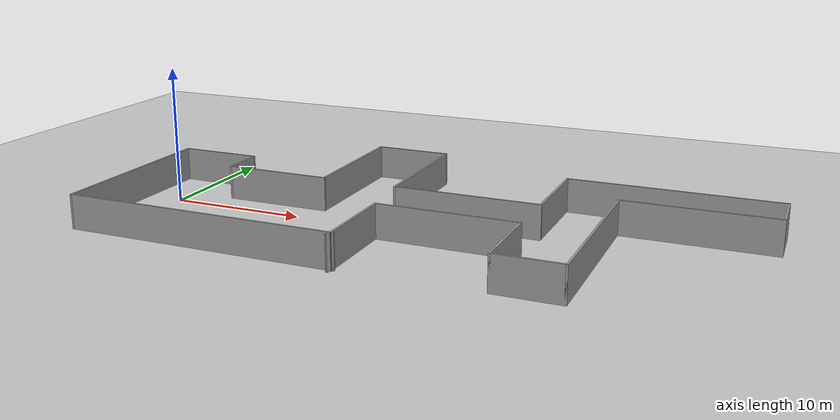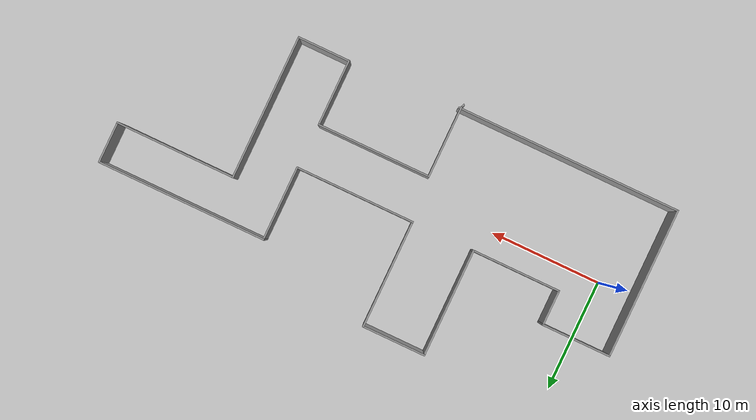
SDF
<sdf version="1.7">
 <world name="default">
  <light name="sun" type="directional">
   <pose>0 0 10 0 -0 0</pose>
   <diffuse>0.8 0.8 0.8 1</diffuse>
   <specular>0.2 0.2 0.2 1</specular>
   <attenuation>
    <range>1000</range>
    <constant>0.9</constant>
    <linear>0.01</linear>
    <quadratic>0.001</quadratic>
   </attenuation>
   <direction>-0.5 0.1 -0.9</direction>
   <spot><inner_angle>0</inner_angle><outer_angle>0</outer_angle><falloff>0</falloff></spot>
  </light>
  <model name="ground_plane">
   <static>1</static>
   <link name="link">
    <collision name="collision">
     <geometry><plane><normal>0 0 1</normal><size>100 100</size></plane></geometry>
     <surface><friction><ode><mu>100</mu><mu2>50</mu2></ode></friction></surface>
    </collision>
    <visual name="visual">
     <cast_shadows>0</cast_shadows>
     <geometry><plane><normal>0 0 1</normal><size>100 100</size></plane></geometry>
     <material>
      <script><uri>file://media/materials/scripts/gazebo.material</uri><name>Gazebo/Grey</name></script>
     </material>
    </visual>
   </link>
  </model>
  <gravity>0 0 -9.8</gravity>
  <magnetic_field>6e-06 2.3e-05 -4.2e-05</magnetic_field>
  <atmosphere type="adiabatic"/>
  <physics type="ode">
   <max_step_size>0.001</max_step_size>
   <real_time_factor>1</real_time_factor>
   <real_time_update_rate>1000</real_time_update_rate>
  </physics>
  <scene><ambient>0.4 0.4 0.4 1</ambient><background>0.7 0.7 0.7 1</background><shadows>1</shadows></scene>
  <spherical_coordinates>
   <surface_model>EARTH_WGS84</surface_model>
   <latitude_deg>0</latitude_deg>
   <longitude_deg>0</longitude_deg>
   <elevation>0</elevation>
   <heading_deg>0</heading_deg>
  </spherical_coordinates>
  <model name="irl_03_env">
   <pose>19.7404 1.58015 0 0 -0 0</pose>
   <link name="Wall_52">
    <collision name="Wall_52_Collision">
     <geometry><box><size>6.5 0.15 2.5</size></box></geometry>
     <pose>0 0 1.25 0 -0 0</pose>
    </collision>
    <visual name="Wall_52_Visual">
     <pose>0 0 1.25 0 -0 0</pose>
     <geometry><box><size>6.5 0.15 2.5</size></box></geometry>
     <material>
      <script><uri>file://media/materials/scripts/gazebo.material</uri><name>Gazebo/Grey</name></script>
      <ambient>1 1 1 1</ambient>
     </material>
     <meta><layer>0</layer></meta>
    </visual>
    <pose>-2.675 -6.66376 0 0 -0 1.5708</pose>
   </link>
   <link name="Wall_53">
    <collision name="Wall_53_Collision">
     <geometry><box><size>10.25 0.15 2.5</size></box></geometry>
     <pose>0 0 1.25 0 -0 0</pose>
    </collision>
    <visual name="Wall_53_Visual">
     <pose>0 0 1.25 0 -0 0</pose>
     <geometry><box><size>10.25 0.15 2.5</size></box></geometry>
     <material>
      <script><uri>file://media/materials/scripts/gazebo.material</uri><name>Gazebo/Grey</name></script>
      <ambient>1 1 1 1</ambient>
     </material>
     <meta><layer>0</layer></meta>
    </visual>
    <pose>2.375 -3.48875 0 0 -0 0</pose>
   </link>
   <link name="Wall_54">
    <collision name="Wall_54_Collision">
     <geometry><box><size>6 0.15 2.5</size></box></geometry>
     <pose>0 0 1.25 0 -0 0</pose>
    </collision>
    <visual name="Wall_54_Visual">
     <pose>0 0 1.25 0 -0 0</pose>
     <geometry><box><size>6 0.15 2.5</size></box></geometry>
     <material>
      <script><uri>file://media/materials/scripts/gazebo.material</uri><name>Gazebo/Grey</name></script>
      <ambient>1 1 1 1</ambient>
     </material>
     <meta><layer>0</layer></meta>
    </visual>
    <pose>7.425 -6.41376 0 0 -0 -1.5708</pose>
   </link>
   <link name="Wall_55">
    <collision name="Wall_55_Collision">
     <geometry><box><size>4.75 0.15 2.5</size></box></geometry>
     <pose>0 0 1.25 0 -0 0</pose>
    </collision>
    <visual name="Wall_55_Visual">
     <pose>0 0 1.25 0 -0 0</pose>
     <geometry><box><size>4.75 0.15 2.5</size></box></geometry>
     <material>
      <script><uri>file://media/materials/scripts/gazebo.material</uri><name>Gazebo/Grey</name></script>
      <ambient>1 1 1 1</ambient>
     </material>
     <meta><layer>0</layer></meta>
    </visual>
    <pose>9.725 -9.33876 0 0 -0 0</pose>
   </link>
   <link name="Wall_56">
    <collision name="Wall_56_Collision">
     <geometry><box><size>13 0.15 2.5</size></box></geometry>
     <pose>0 0 1.25 0 -0 0</pose>
    </collision>
    <visual name="Wall_56_Visual">
     <pose>0 0 1.25 0 -0 0</pose>
     <geometry><box><size>13 0.15 2.5</size></box></geometry>
     <material>
      <script><uri>file://media/materials/scripts/gazebo.material</uri><name>Gazebo/Grey</name></script>
      <ambient>1 1 1 1</ambient>
     </material>
     <meta><layer>0</layer></meta>
    </visual>
    <pose>12.025 -2.91376 0 0 -0 1.5708</pose>
   </link>
   <link name="Wall_57">
    <collision name="Wall_57_Collision">
     <geometry><box><size>10.75 0.15 2.5</size></box></geometry>
     <pose>0 0 1.25 0 -0 0</pose>
    </collision>
    <visual name="Wall_57_Visual">
     <pose>0 0 1.25 0 -0 0</pose>
     <geometry><box><size>10.75 0.15 2.5</size></box></geometry>
     <material>
      <script><uri>file://media/materials/scripts/gazebo.material</uri><name>Gazebo/Grey</name></script>
      <ambient>1 1 1 1</ambient>
     </material>
     <meta><layer>0</layer></meta>
    </visual>
    <pose>17.325 3.51125 0 0 -0 0</pose>
   </link>
   <link name="Wall_58">
    <collision name="Wall_58_Collision">
     <geometry><box><size>3.75 0.15 2.5</size></box></geometry>
     <pose>0 0 1.25 0 -0 0</pose>
    </collision>
    <visual name="Wall_58_Visual">
     <pose>0 0 1.25 0 -0 0</pose>
     <geometry><box><size>3.75 0.15 2.5</size></box></geometry>
     <material>
      <script><uri>file://media/materials/scripts/gazebo.material</uri><name>Gazebo/Grey</name></script>
      <ambient>1 1 1 1</ambient>
     </material>
     <meta><layer>0</layer></meta>
    </visual>
    <pose>22.625 5.31125 0 0 -0 1.5708</pose>
   </link>
   <link name="Wall_59">
    <collision name="Wall_59_Collision">
     <geometry><box><size>15.25 0.15 2.5</size></box></geometry>
     <pose>0 0 1.25 0 -0 0</pose>
    </collision>
    <visual name="Wall_59_Visual">
     <pose>0 0 1.25 0 -0 0</pose>
     <geometry><box><size>15.25 0.15 2.5</size></box></geometry>
     <material>
      <script><uri>file://media/materials/scripts/gazebo.material</uri><name>Gazebo/Grey</name></script>
      <ambient>1 1 1 1</ambient>
     </material>
     <meta><layer>0</layer></meta>
    </visual>
    <pose>15.075 7.11125 0 0 -0 3.14159</pose>
   </link>
   <link name="Wall_60">
    <collision name="Wall_60_Collision">
     <geometry><box><size>6.75 0.15 2.5</size></box></geometry>
     <pose>0 0 1.25 0 -0 0</pose>
    </collision>
    <visual name="Wall_60_Visual">
     <pose>0 0 1.25 0 -0 0</pose>
     <geometry><box><size>6.75 0.15 2.5</size></box></geometry>
     <material>
      <script><uri>file://media/materials/scripts/gazebo.material</uri><name>Gazebo/Grey</name></script>
      <ambient>1 1 1 1</ambient>
     </material>
     <meta><layer>0</layer></meta>
    </visual>
    <pose>7.525 3.81124 0 0 -0 -1.5708</pose>
   </link>
   <link name="Wall_73">
    <collision name="Wall_73_Collision">
     <geometry><box><size>0.419258 0.15 2.5</size></box></geometry>
     <pose>0 0 1.25 0 -0 0</pose>
    </collision>
    <visual name="Wall_73_Visual">
     <pose>0 0 1.25 0 -0 0</pose>
     <geometry><box><size>0.419258 0.15 2.5</size></box></geometry>
     <material>
      <script><uri>file://media/materials/scripts/gazebo.material</uri><name>Gazebo/Grey</name></script>
      <ambient>1 1 1 1</ambient>
     </material>
     <meta><layer>0</layer></meta>
    </visual>
    <pose>-2.725 -9.96376 0 0 -0 1.19029</pose>
   </link>
   <link name="Wall_77">
    <collision name="Wall_77_Collision">
     <geometry><box><size>10.75 0.15 2.5</size></box></geometry>
     <pose>0 0 1.25 0 -0 0</pose>
    </collision>
    <visual name="Wall_77_Visual">
     <pose>0 0 1.25 0 -0 0</pose>
     <geometry><box><size>10.75 0.15 2.5</size></box></geometry>
     <material>
      <script><uri>file://media/materials/scripts/gazebo.material</uri><name>Gazebo/Grey</name></script>
      <ambient>1 1 1 1</ambient>
     </material>
     <meta><layer>0</layer></meta>
    </visual>
    <pose>2.225 0.511245 0 0 -0 3.14159</pose>
   </link>
   <link name="Wall_78">
    <collision name="Wall_78_Collision">
     <geometry><box><size>9.75 0.15 2.5</size></box></geometry>
     <pose>0 0 1.25 0 -0 0</pose>
    </collision>
    <visual name="Wall_78_Visual">
     <pose>0 0 1.25 0 -0 0</pose>
     <geometry><box><size>9.75 0.15 2.5</size></box></geometry>
     <material>
      <script><uri>file://media/materials/scripts/gazebo.material</uri><name>Gazebo/Grey</name></script>
      <ambient>1 1 1 1</ambient>
     </material>
     <meta><layer>0</layer></meta>
    </visual>
    <pose>-3.075 5.31125 0 0 -0 1.5708</pose>
   </link>
   <link name="Wall_79">
    <collision name="Wall_79_Collision">
     <geometry><box><size>5.75 0.15 2.5</size></box></geometry>
     <pose>0 0 1.25 0 -0 0</pose>
    </collision>
    <visual name="Wall_79_Visual">
     <pose>0 0 1.25 0 -0 0</pose>
     <geometry><box><size>5.75 0.15 2.5</size></box></geometry>
     <material>
      <script><uri>file://media/materials/scripts/gazebo.material</uri><name>Gazebo/Grey</name></script>
      <ambient>1 1 1 1</ambient>
     </material>
     <meta><layer>0</layer></meta>
    </visual>
    <pose>-5.875 10.1112 0 0 -0 3.14159</pose>
   </link>
   <link name="Wall_80">
    <collision name="Wall_80_Collision">
     <geometry><box><size>9.75 0.15 2.5</size></box></geometry>
     <pose>0 0 1.25 0 -0 0</pose>
    </collision>
    <visual name="Wall_80_Visual">
     <pose>0 0 1.25 0 -0 0</pose>
     <geometry><box><size>9.75 0.15 2.5</size></box></geometry>
     <material>
      <script><uri>file://media/materials/scripts/gazebo.material</uri><name>Gazebo/Grey</name></script>
      <ambient>1 1 1 1</ambient>
     </material>
     <meta><layer>0</layer></meta>
    </visual>
    <pose>-8.675 5.31125 0 0 -0 -1.5708</pose>
   </link>
   <link name="Wall_81">
    <collision name="Wall_81_Collision">
     <geometry><box><size>8 0.15 2.5</size></box></geometry>
     <pose>0 0 1.25 0 -0 0</pose>
    </collision>
    <visual name="Wall_81_Visual">
     <pose>0 0 1.25 0 -0 0</pose>
     <geometry><box><size>8 0.15 2.5</size></box></geometry>
     <material>
      <script><uri>file://media/materials/scripts/gazebo.material</uri><name>Gazebo/Grey</name></script>
      <ambient>1 1 1 1</ambient>
     </material>
     <meta><layer>0</layer></meta>
    </visual>
    <pose>-12.6 0.511245 0 0 -0 3.14159</pose>
   </link>
   <link name="Wall_82">
    <collision name="Wall_82_Collision">
     <geometry><box><size>3.25 0.15 2.5</size></box></geometry>
     <pose>0 0 1.25 0 -0 0</pose>
    </collision>
    <visual name="Wall_82_Visual">
     <pose>0 0 1.25 0 -0 0</pose>
     <geometry><box><size>3.25 0.15 2.5</size></box></geometry>
     <material>
      <script><uri>file://media/materials/scripts/gazebo.material</uri><name>Gazebo/Grey</name></script>
      <ambient>1 1 1 1</ambient>
     </material>
     <meta><layer>0</layer></meta>
    </visual>
    <pose>-16.525 2.06124 0 0 -0 1.5708</pose>
   </link>
   <link name="Wall_83">
    <collision name="Wall_83_Collision">
     <geometry><box><size>6.25 0.15 2.5</size></box></geometry>
     <pose>0 0 1.25 0 -0 0</pose>
    </collision>
    <visual name="Wall_83_Visual">
     <pose>0 0 1.25 0 -0 0</pose>
     <geometry><box><size>6.25 0.15 2.5</size></box></geometry>
     <material>
      <script><uri>file://media/materials/scripts/gazebo.material</uri><name>Gazebo/Grey</name></script>
      <ambient>1 1 1 1</ambient>
     </material>
     <meta><layer>0</layer></meta>
    </visual>
    <pose>-19.575 3.61124 0 0 -0 3.14159</pose>
   </link>
   <link name="Wall_84">
    <collision name="Wall_84_Collision">
     <geometry><box><size>13.5 0.15 2.5</size></box></geometry>
     <pose>0 0 1.25 0 -0 0</pose>
    </collision>
    <visual name="Wall_84_Visual">
     <pose>0 0 1.25 0 -0 0</pose>
     <geometry><box><size>13.5 0.15 2.5</size></box></geometry>
     <material>
      <script><uri>file://media/materials/scripts/gazebo.material</uri><name>Gazebo/Grey</name></script>
      <ambient>1 1 1 1</ambient>
     </material>
     <meta><layer>0</layer></meta>
    </visual>
    <pose>-22.625 -3.06376 0 0 -0 -1.5708</pose>
   </link>
   <link name="Wall_89">
    <collision name="Wall_89_Collision">
     <geometry><box><size>20.25 0.15 2.5</size></box></geometry>
     <pose>0 0 1.25 0 -0 0</pose>
    </collision>
    <visual name="Wall_89_Visual">
     <pose>0 0 1.25 0 -0 0</pose>
     <geometry><box><size>20.25 0.15 2.5</size></box></geometry>
     <material>
      <script><uri>file://media/materials/scripts/gazebo.material</uri><name>Gazebo/Grey</name></script>
      <ambient>1 1 1 1</ambient>
     </material>
     <meta><layer>0</layer></meta>
    </visual>
    <pose>-12.575 -9.73876 0 0 -0 0</pose>
   </link>
   <static>1</static>
  </model>
 </world>
</sdf>
